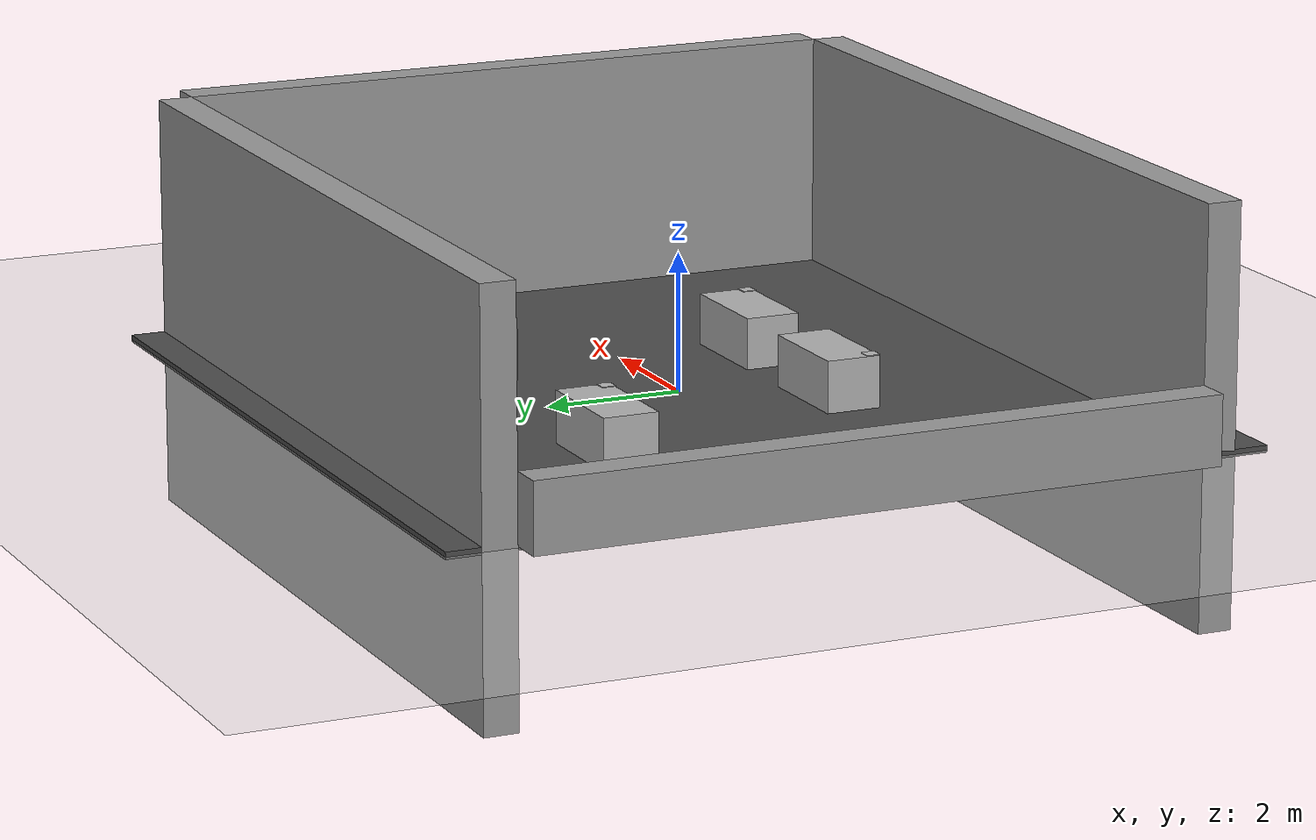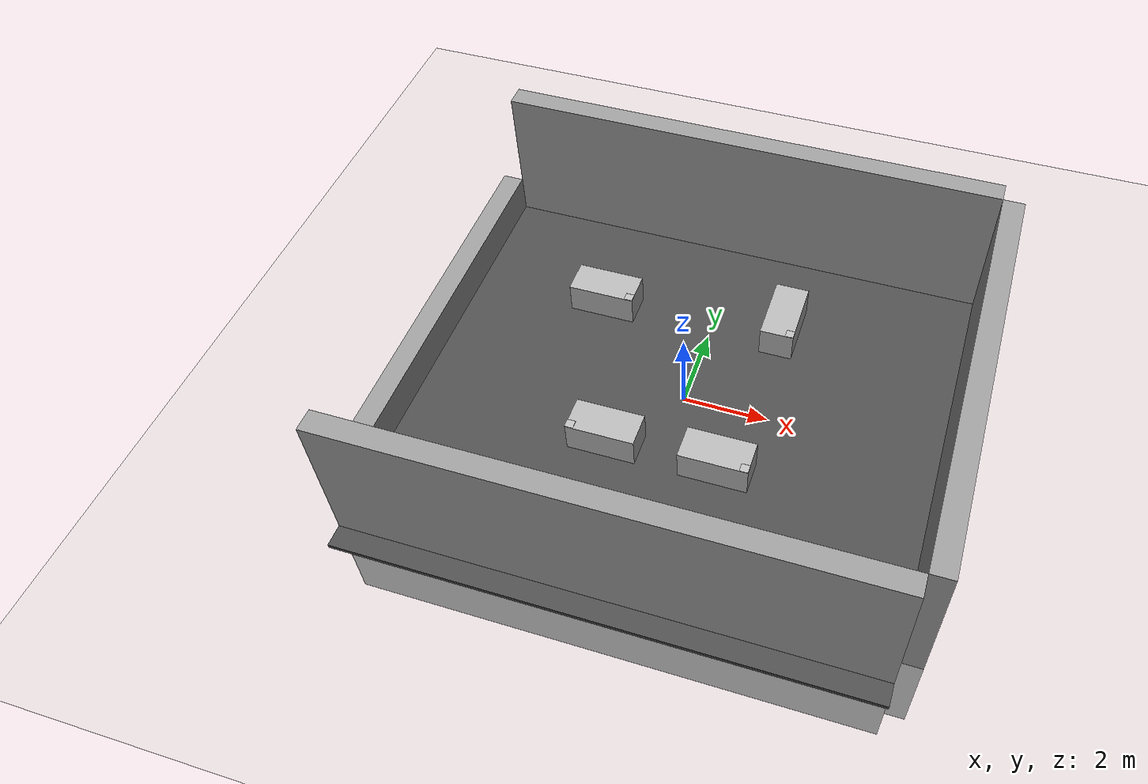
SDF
<sdf version="1.6">
 <world name="default">
  <light name="sun" type="directional">
   <pose>0 0 10 0 -0 0</pose>
   <diffuse>0.8 0.8 0.8 1</diffuse>
   <specular>0.1 0.1 0.1 1</specular>
   <attenuation>
    <range>1000</range>
    <constant>0.9</constant>
    <linear>0.01</linear>
    <quadratic>0.001</quadratic>
   </attenuation>
   <direction>-0.5 0.5 -1</direction>
  </light>
  <model name="ground_plane">
   <static>1</static>
   <link name="link">
    <collision name="collision">
     <geometry><plane><normal>0 0 1</normal><size>100 100</size></plane></geometry>
     <surface><friction><ode><mu>100</mu><mu2>50</mu2></ode></friction></surface>
    </collision>
    <visual name="visual">
     <cast_shadows>0</cast_shadows>
     <geometry><plane><normal>0 0 1</normal><size>100 100</size></plane></geometry>
     <material>
      <script><uri>file://media/materials/scripts/gazebo.material</uri><name>Gazebo/Grey</name></script>
     </material>
    </visual>
   </link>
  </model>
  <gravity>0 0 -9.8</gravity>
  <magnetic_field>6e-06 2.3e-05 -4.2e-05</magnetic_field>
  <atmosphere type="adiabatic"/>
  <physics name="default_physics" default="0" type="ode">
   <max_step_size>0.001</max_step_size>
   <real_time_factor>1</real_time_factor>
   <real_time_update_rate>1000</real_time_update_rate>
  </physics>
  <scene><ambient>0.4 0.4 0.4 1</ambient><background>0.7 0.7 0.7 1</background><shadows>1</shadows></scene>
  <spherical_coordinates>
   <surface_model>EARTH_WGS84</surface_model>
   <latitude_deg>0</latitude_deg>
   <longitude_deg>0</longitude_deg>
   <elevation>0</elevation>
   <heading_deg>0</heading_deg>
  </spherical_coordinates>
  <model name="tableX">
   <link name="link">
    <inertial>
     <mass>1</mass>
     <inertia>
      <ixx>0.166667</ixx>
      <ixy>0</ixy>
      <ixz>0</ixz>
      <iyy>0.166667</iyy>
      <iyz>0</iyz>
      <izz>0.166667</izz>
     </inertia>
    </inertial>
    <visual name="visual">
     <geometry><box><size>1.6 0.8 0.8</size></box></geometry>
     <material>
      <script>
       <uri>model://tableX/materials/scripts</uri>
       <uri>model://tableX/materials/textures</uri>
       <name>SPX/Solar_cell</name>
      </script>
      <ambient>0.3 0.3 0.3 1</ambient>
      <diffuse>0.7 0.7 0.7 1</diffuse>
      <specular>0.01 0.01 0.01 1</specular>
      <emissive>0 0 0 1</emissive>
      <shader type="vertex"><normal_map>__default__</normal_map></shader>
     </material>
    </visual>
    <collision name="collision">
     <geometry><box><size>1.6 0.8 0.8</size></box></geometry>
     <surface>
      <friction>
       <ode><mu>1</mu><mu2>1</mu2><fdir1>0 0 0</fdir1><slip1>0</slip1><slip2>0</slip2></ode>
       <torsional>
        <coefficient>1</coefficient>
        <patch_radius>0</patch_radius>
        <surface_radius>0</surface_radius>
        <use_patch_radius>1</use_patch_radius>
        <ode><slip>0</slip></ode>
       </torsional>
      </friction>
      <bounce><restitution_coefficient>0</restitution_coefficient><threshold>1e+06</threshold></bounce>
      <contact>
       <collide_without_contact>0</collide_without_contact>
       <collide_without_contact_bitmask>1</collide_without_contact_bitmask>
       <collide_bitmask>1</collide_bitmask>
       <ode>
        <soft_cfm>0</soft_cfm>
        <soft_erp>0.2</soft_erp>
        <kp>1e+13</kp>
        <kd>1</kd>
        <max_vel>0.01</max_vel>
        <min_depth>0</min_depth>
       </ode>
       <bullet>
        <split_impulse>1</split_impulse>
        <split_impulse_penetration_threshold>-0.01</split_impulse_penetration_threshold>
        <soft_cfm>0</soft_cfm>
        <soft_erp>0.2</soft_erp>
        <kp>1e+13</kp>
        <kd>1</kd>
       </bullet>
      </contact>
     </surface>
    </collision>
   </link>
   <static>1</static>
   <pose>1.29806 -1.69852 0.4 0 -0 0</pose>
  </model>
  <model name="tableX_0">
   <link name="link">
    <inertial>
     <mass>1</mass>
     <inertia>
      <ixx>0.166667</ixx>
      <ixy>0</ixy>
      <ixz>0</ixz>
      <iyy>0.166667</iyy>
      <iyz>0</iyz>
      <izz>0.166667</izz>
     </inertia>
    </inertial>
    <visual name="visual">
     <geometry><box><size>1.6 0.8 0.8</size></box></geometry>
     <material>
      <script>
       <uri>model://tableX/materials/scripts</uri>
       <uri>model://tableX/materials/textures</uri>
       <name>SPX/Solar_cell</name>
      </script>
      <ambient>0.3 0.3 0.3 1</ambient>
      <diffuse>0.7 0.7 0.7 1</diffuse>
      <specular>0.01 0.01 0.01 1</specular>
      <emissive>0 0 0 1</emissive>
      <shader type="vertex"><normal_map>__default__</normal_map></shader>
     </material>
    </visual>
    <collision name="collision">
     <geometry><box><size>1.6 0.8 0.8</size></box></geometry>
     <surface>
      <friction>
       <ode><mu>1</mu><mu2>1</mu2><fdir1>0 0 0</fdir1><slip1>0</slip1><slip2>0</slip2></ode>
       <torsional>
        <coefficient>1</coefficient>
        <patch_radius>0</patch_radius>
        <surface_radius>0</surface_radius>
        <use_patch_radius>1</use_patch_radius>
        <ode><slip>0</slip></ode>
       </torsional>
      </friction>
      <bounce><restitution_coefficient>0</restitution_coefficient><threshold>1e+06</threshold></bounce>
      <contact>
       <collide_without_contact>0</collide_without_contact>
       <collide_without_contact_bitmask>1</collide_without_contact_bitmask>
       <collide_bitmask>1</collide_bitmask>
       <ode>
        <soft_cfm>0</soft_cfm>
        <soft_erp>0.2</soft_erp>
        <kp>1e+13</kp>
        <kd>1</kd>
        <max_vel>0.01</max_vel>
        <min_depth>0</min_depth>
       </ode>
       <bullet>
        <split_impulse>1</split_impulse>
        <split_impulse_penetration_threshold>-0.01</split_impulse_penetration_threshold>
        <soft_cfm>0</soft_cfm>
        <soft_erp>0.2</soft_erp>
        <kp>1e+13</kp>
        <kd>1</kd>
       </bullet>
      </contact>
     </surface>
    </collision>
   </link>
   <static>1</static>
   <pose>-1.29542 -1.69952 0.4 0 -0 0</pose>
  </model>
  <model name="tabley">
   <link name="link">
    <inertial>
     <mass>1</mass>
     <inertia>
      <ixx>0.166667</ixx>
      <ixy>0</ixy>
      <ixz>0</ixz>
      <iyy>0.166667</iyy>
      <iyz>0</iyz>
      <izz>0.166667</izz>
     </inertia>
    </inertial>
    <visual name="visual">
     <geometry><box><size>0.8 1.6 0.8</size></box></geometry>
     <material>
      <script>
       <uri>model://tableY/materials/scripts</uri>
       <uri>model://tableY/materials/textures</uri>
       <name>SPY/Solar_cell</name>
      </script>
      <ambient>0.3 0.3 0.3 1</ambient>
      <diffuse>0.7 0.7 0.7 1</diffuse>
      <specular>0.01 0.01 0.01 1</specular>
      <emissive>0 0 0 1</emissive>
      <shader type="vertex"><normal_map>__default__</normal_map></shader>
     </material>
    </visual>
    <collision name="collision">
     <geometry><box><size>0.8 1.6 0.8</size></box></geometry>
     <surface>
      <friction>
       <ode><mu>1</mu><mu2>1</mu2><fdir1>0 0 0</fdir1><slip1>0</slip1><slip2>0</slip2></ode>
       <torsional>
        <coefficient>1</coefficient>
        <patch_radius>0</patch_radius>
        <surface_radius>0</surface_radius>
        <use_patch_radius>1</use_patch_radius>
        <ode><slip>0</slip></ode>
       </torsional>
      </friction>
      <bounce><restitution_coefficient>0</restitution_coefficient><threshold>1e+06</threshold></bounce>
      <contact>
       <collide_without_contact>0</collide_without_contact>
       <collide_without_contact_bitmask>1</collide_without_contact_bitmask>
       <collide_bitmask>1</collide_bitmask>
       <ode>
        <soft_cfm>0</soft_cfm>
        <soft_erp>0.2</soft_erp>
        <kp>1e+13</kp>
        <kd>1</kd>
        <max_vel>0.01</max_vel>
        <min_depth>0</min_depth>
       </ode>
       <bullet>
        <split_impulse>1</split_impulse>
        <split_impulse_penetration_threshold>-0.01</split_impulse_penetration_threshold>
        <soft_cfm>0</soft_cfm>
        <soft_erp>0.2</soft_erp>
        <kp>1e+13</kp>
        <kd>1</kd>
       </bullet>
      </contact>
     </surface>
    </collision>
   </link>
   <static>1</static>
   <pose>1.697 2.703 0.4 0 -0 0</pose>
  </model>
  <model name="APtag0">
   <static>1</static>
   <pose>2 2 0.81 0 -0 0</pose>
   <link name="box">
    <collision name="collision"><geometry><box><size>0.2 0.2 0.02</size></box></geometry></collision>
    <visual name="visual">
     <geometry><box><size>0.2 0.2 0.01</size></box></geometry>
     <material>
      <script>
       <uri>model://APtag0/materials/scripts</uri>
       <uri>model://APtag0/materials/textures</uri>
       <name>APtag0/tag0</name>
      </script>
     </material>
    </visual>
   </link>
  </model>
  <model name="APtag1">
   <static>1</static>
   <pose>2 -2 0.81 0 -0 0</pose>
   <link name="box">
    <collision name="collision"><geometry><box><size>0.2 0.2 0.02</size></box></geometry></collision>
    <visual name="visual">
     <geometry><box><size>0.2 0.2 0.01</size></box></geometry>
     <material>
      <script>
       <uri>model://APtag1/materials/scripts</uri>
       <uri>model://APtag1/materials/textures</uri>
       <name>APtag1/tag1</name>
      </script>
     </material>
    </visual>
   </link>
  </model>
  <model name="APtag2">
   <static>1</static>
   <pose>-2 -2 0.81 0 -0 0</pose>
   <link name="box">
    <collision name="collision"><geometry><box><size>0.2 0.2 0.02</size></box></geometry></collision>
    <visual name="visual">
     <geometry><box><size>0.2 0.2 0.01</size></box></geometry>
     <material>
      <script>
       <uri>model://APtag2/materials/scripts</uri>
       <uri>model://APtag2/materials/textures</uri>
       <name>APtag2/tag2</name>
      </script>
     </material>
    </visual>
   </link>
  </model>
  <model name="APtag1_0">
   <static>1</static>
   <pose>-2 2 0.81 0 -0 0</pose>
   <link name="box">
    <collision name="collision"><geometry><box><size>0.2 0.2 0.02</size></box></geometry></collision>
    <visual name="visual">
     <geometry><box><size>0.2 0.2 0.01</size></box></geometry>
     <material>
      <script>
       <uri>model://APtag1/materials/scripts</uri>
       <uri>model://APtag1/materials/textures</uri>
       <name>APtag1/tag1</name>
      </script>
     </material>
    </visual>
   </link>
  </model>
  <model name="tableX_clone">
   <link name="link">
    <inertial>
     <mass>1</mass>
     <inertia>
      <ixx>0.166667</ixx>
      <ixy>0</ixy>
      <ixz>0</ixz>
      <iyy>0.166667</iyy>
      <iyz>0</iyz>
      <izz>0.166667</izz>
     </inertia>
    </inertial>
    <visual name="visual">
     <geometry><box><size>1.6 0.8 0.8</size></box></geometry>
     <material>
      <script>
       <uri>model://tableX/materials/scripts</uri>
       <uri>model://tableX/materials/textures</uri>
       <name>SPX/Solar_cell</name>
      </script>
      <ambient>0.3 0.3 0.3 1</ambient>
      <diffuse>0.7 0.7 0.7 1</diffuse>
      <specular>0.01 0.01 0.01 1</specular>
      <emissive>0 0 0 1</emissive>
      <shader type="vertex"><normal_map>__default__</normal_map></shader>
     </material>
    </visual>
    <collision name="collision">
     <geometry><box><size>1.6 0.8 0.8</size></box></geometry>
     <surface>
      <friction>
       <ode><mu>1</mu><mu2>1</mu2><fdir1>0 0 0</fdir1><slip1>0</slip1><slip2>0</slip2></ode>
       <torsional>
        <coefficient>1</coefficient>
        <patch_radius>0</patch_radius>
        <surface_radius>0</surface_radius>
        <use_patch_radius>1</use_patch_radius>
        <ode><slip>0</slip></ode>
       </torsional>
      </friction>
      <bounce><restitution_coefficient>0</restitution_coefficient><threshold>1e+06</threshold></bounce>
      <contact>
       <collide_without_contact>0</collide_without_contact>
       <collide_without_contact_bitmask>1</collide_without_contact_bitmask>
       <collide_bitmask>1</collide_bitmask>
       <ode>
        <soft_cfm>0</soft_cfm>
        <soft_erp>0.2</soft_erp>
        <kp>1e+13</kp>
        <kd>1</kd>
        <max_vel>0.01</max_vel>
        <min_depth>0</min_depth>
       </ode>
       <bullet>
        <split_impulse>1</split_impulse>
        <split_impulse_penetration_threshold>-0.01</split_impulse_penetration_threshold>
        <soft_cfm>0</soft_cfm>
        <soft_erp>0.2</soft_erp>
        <kp>1e+13</kp>
        <kd>1</kd>
       </bullet>
      </contact>
     </surface>
    </collision>
   </link>
   <static>1</static>
   <pose>-2.7 2.3 0.4 0 -0 0</pose>
  </model>
  <model name="unit_box_0">
   <static>1</static>
   <pose>-6.25 0 0.5 -1e-05 0 0</pose>
   <link name="link">
    <inertial>
     <mass>1</mass>
     <inertia>
      <ixx>0.166667</ixx>
      <ixy>0</ixy>
      <ixz>0</ixz>
      <iyy>0.166667</iyy>
      <iyz>0</iyz>
      <izz>0.166667</izz>
     </inertia>
    </inertial>
    <collision name="collision"><geometry><box><size>0.5 10 1</size></box></geometry></collision>
    <visual name="visual">
     <geometry><box><size>0.5 10 1</size></box></geometry>
     <material>
      <script><name>Gazebo/Grey</name><uri>file://media/materials/scripts/gazebo.material</uri></script>
     </material>
    </visual>
   </link>
  </model>
  <model name="unit_box_1">
   <static>1</static>
   <pose>0 5.25 0.5 0 1e-05 0</pose>
   <link name="link">
    <inertial>
     <mass>1</mass>
     <inertia>
      <ixx>0.166667</ixx>
      <ixy>0</ixy>
      <ixz>0</ixz>
      <iyy>0.166667</iyy>
      <iyz>0</iyz>
      <izz>0.166667</izz>
     </inertia>
    </inertial>
    <collision name="collision"><geometry><box><size>12 0.5 6</size></box></geometry></collision>
    <visual name="visual">
     <geometry><box><size>12 0.5 6</size></box></geometry>
     <material>
      <script><name>Gazebo/Grey</name><uri>file://media/materials/scripts/gazebo.material</uri></script>
     </material>
    </visual>
   </link>
  </model>
  <model name="unit_box_2">
   <static>1</static>
   <pose>6.25 0 0.5 -1e-05 0 0</pose>
   <link name="link">
    <inertial>
     <mass>1</mass>
     <inertia>
      <ixx>0.166667</ixx>
      <ixy>0</ixy>
      <ixz>0</ixz>
      <iyy>0.166667</iyy>
      <iyz>0</iyz>
      <izz>0.166667</izz>
     </inertia>
    </inertial>
    <collision name="collision"><geometry><box><size>0.5 10 6</size></box></geometry></collision>
    <visual name="visual">
     <geometry><box><size>0.5 10 6</size></box></geometry>
     <material>
      <script><name>Gazebo/Grey</name><uri>file://media/materials/scripts/gazebo.material</uri></script>
     </material>
    </visual>
   </link>
  </model>
  <model name="unit_box_3">
   <static>1</static>
   <pose>0 -5.25 0.5 0 -0 0</pose>
   <link name="link">
    <inertial>
     <mass>1</mass>
     <inertia>
      <ixx>0.166667</ixx>
      <ixy>0</ixy>
      <ixz>0</ixz>
      <iyy>0.166667</iyy>
      <iyz>0</iyz>
      <izz>0.166667</izz>
     </inertia>
    </inertial>
    <collision name="collision"><geometry><box><size>12 0.5 6</size></box></geometry></collision>
    <visual name="visual">
     <geometry><box><size>12 0.5 6</size></box></geometry>
     <material>
      <script><name>Gazebo/Grey</name><uri>file://media/materials/scripts/gazebo.material</uri></script>
     </material>
    </visual>
   </link>
  </model>
  <model name="asphalt_plane">
   <static>1</static>
   <link name="link">
    <collision name="collision"><geometry><box><size>12 12 0.1</size></box></geometry></collision>
    <visual name="visual">
     <cast_shadows>0</cast_shadows>
     <geometry><box><size>12 12 0.1</size></box></geometry>
     <material>
      <script>
       <uri>model://asphalt_plane/materials/scripts</uri>
       <uri>model://asphalt_plane/materials/textures</uri>
       <name>vrc/asphalt</name>
      </script>
     </material>
    </visual>
   </link>
  </model>
 </world>
</sdf>
